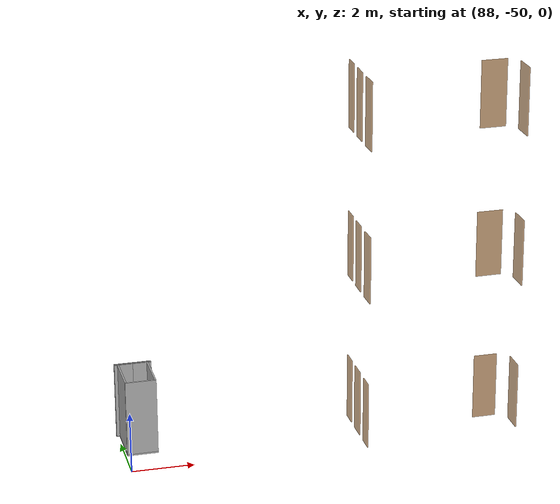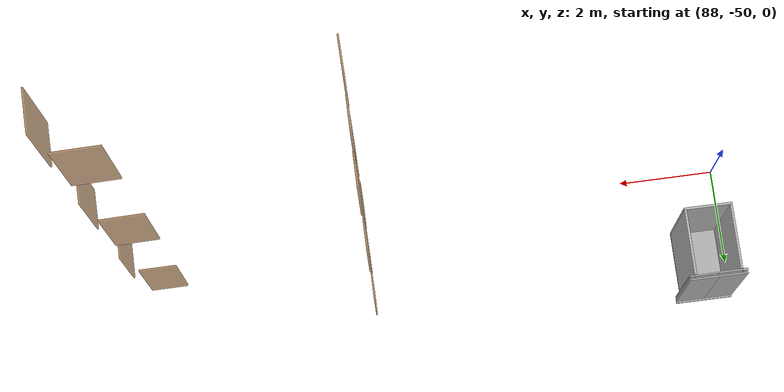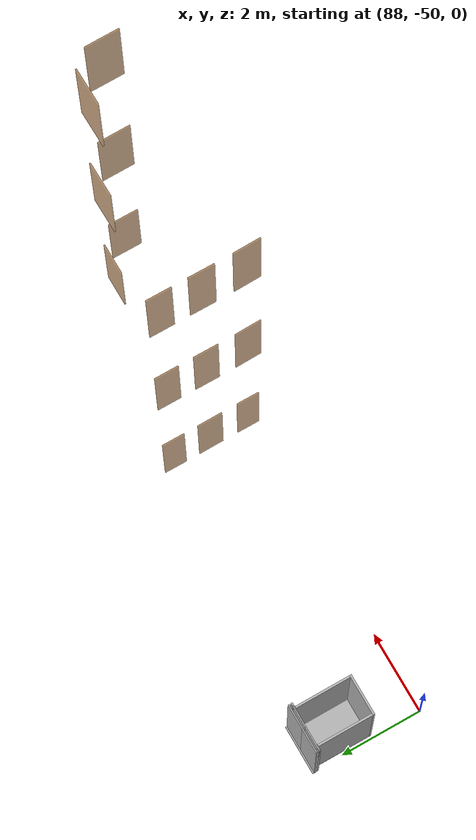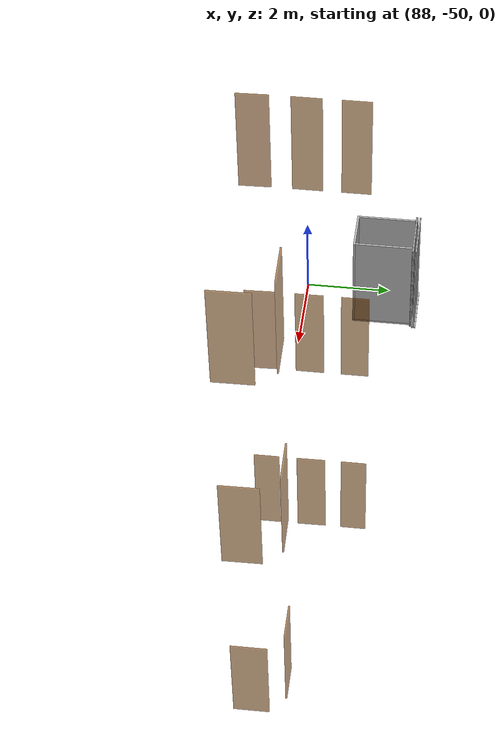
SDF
<sdf version="1.7">
 <world name="sim_world">
  <model name="p91">
   <pose>95.59673417083945 -48.081886462623366 0.0 0 0 1.5686141369561113</pose>
   <link name="right">
    <pose>0 0 1.11 0 0 0</pose>
    <visual name="right_visual">
     <geometry><box><size>0.5500736276757273 0.03 2.2</size></box></geometry>
     <material>
      <ambient>0.5 0.25 0 0.6</ambient>
      <diffuse>0.5 0.25 0 0.6</diffuse>
      <pbr><metal><metalness>0.0</metalness></metal></pbr>
     </material>
    </visual>
    <collision name="right_collision">
     <geometry><box><size>0.5500736276757273 0.03 2.2</size></box></geometry>
     <surface><contact><collide_bitmask>0x02</collide_bitmask></contact></surface>
    </collision>
    <inertial>
     <mass>50.0</mass>
     <inertia><ixx>20.17041666666667</ixx><iyy>21.4274208161014</iyy><izz>1.264504149434728</izz></inertia>
    </inertial>
   </link>
   <joint name="right_joint" type="revolute">
    <parent>world</parent>
    <child>right</child>
    <axis><xyz>0 0 1</xyz><limit><lower>0</lower><upper>1.57</upper></limit></axis>
    <pose>0.28003681383786366 0 0 0 0 0</pose>
   </joint>
   <plugin name="register_component" filename="libregister_component.so">
    <component name="Door">
     <v_max_door>0.5</v_max_door>
     <a_max_door>0.3</a_max_door>
     <a_nom_door>0.15</a_nom_door>
     <dx_min_door>0.01</dx_min_door>
     <f_max_door>500.0</f_max_door>
     <ros_interface>true</ros_interface>
     <door name="p91" type="SwingDoor" left_joint_name="empty_joint" right_joint_name="right_joint"/>
    </component>
   </plugin>
  </model>
  <model name="p92">
   <pose>95.59971186038939 -49.00974785932272 0.0 0 0 1.5822521638563822</pose>
   <link name="right">
    <pose>0 0 1.11 0 0 0</pose>
    <visual name="right_visual">
     <geometry><box><size>0.6165558828905612 0.03 2.2</size></box></geometry>
     <material>
      <ambient>0.5 0.25 0 0.6</ambient>
      <diffuse>0.5 0.25 0 0.6</diffuse>
      <pbr><metal><metalness>0.0</metalness></metal></pbr>
     </material>
    </visual>
    <collision name="right_collision">
     <geometry><box><size>0.6165558828905612 0.03 2.2</size></box></geometry>
     <surface><contact><collide_bitmask>0x02</collide_bitmask></contact></surface>
    </collision>
    <inertial>
     <mass>50.0</mass>
     <inertia><ixx>20.17041666666667</ixx><iyy>21.750588153029003</iyy><izz>1.5876714863623311</izz></inertia>
    </inertial>
   </link>
   <joint name="right_joint" type="revolute">
    <parent>world</parent>
    <child>right</child>
    <axis><xyz>0 0 1</xyz><limit><lower>0</lower><upper>1.57</upper></limit></axis>
    <pose>0.3132779414452806 0 0 0 0 0</pose>
   </joint>
   <plugin name="register_component" filename="libregister_component.so">
    <component name="Door">
     <v_max_door>0.5</v_max_door>
     <a_max_door>0.3</a_max_door>
     <a_nom_door>0.15</a_nom_door>
     <dx_min_door>0.01</dx_min_door>
     <f_max_door>500.0</f_max_door>
     <ros_interface>true</ros_interface>
     <door name="p92" type="SwingDoor" left_joint_name="empty_joint" right_joint_name="right_joint"/>
    </component>
   </plugin>
  </model>
  <model name="p93">
   <pose>95.60276732541266 -49.9771636395959 0.0 0 0 1.5688950377922342</pose>
   <link name="right">
    <pose>0 0 1.11 0 0 0</pose>
    <visual name="right_visual">
     <geometry><box><size>0.551006613825131 0.03 2.2</size></box></geometry>
     <material>
      <ambient>0.5 0.25 0 0.6</ambient>
      <diffuse>0.5 0.25 0 0.6</diffuse>
      <pbr><metal><metalness>0.0</metalness></metal></pbr>
     </material>
    </visual>
    <collision name="right_collision">
     <geometry><box><size>0.551006613825131 0.03 2.2</size></box></geometry>
     <surface><contact><collide_bitmask>0x02</collide_bitmask></contact></surface>
    </collision>
    <inertial>
     <mass>50.0</mass>
     <inertia><ixx>20.17041666666667</ixx><iyy>21.431701201995992</iyy><izz>1.2687845353293215</izz></inertia>
    </inertial>
   </link>
   <joint name="right_joint" type="revolute">
    <parent>world</parent>
    <child>right</child>
    <axis><xyz>0 0 1</xyz><limit><lower>0</lower><upper>1.57</upper></limit></axis>
    <pose>0.28050330691256553 0 0 0 0 0</pose>
   </joint>
   <plugin name="register_component" filename="libregister_component.so">
    <component name="Door">
     <v_max_door>0.5</v_max_door>
     <a_max_door>0.3</a_max_door>
     <a_nom_door>0.15</a_nom_door>
     <dx_min_door>0.01</dx_min_door>
     <f_max_door>500.0</f_max_door>
     <ros_interface>true</ros_interface>
     <door name="p93" type="SwingDoor" left_joint_name="empty_joint" right_joint_name="right_joint"/>
    </component>
   </plugin>
  </model>
  <model name="p94">
   <pose>99.93968326864396 -48.981548694853515 0.0 0 0 0.006281040079906356</pose>
   <link name="right">
    <pose>0 0 1.11 0 0 0</pose>
    <visual name="right_visual">
     <geometry><box><size>0.7754144439662852 0.03 2.2</size></box></geometry>
     <material>
      <ambient>0.5 0.25 0 0.6</ambient>
      <diffuse>0.5 0.25 0 0.6</diffuse>
      <pbr><metal><metalness>0.0</metalness></metal></pbr>
     </material>
    </visual>
    <collision name="right_collision">
     <geometry><box><size>0.7754144439662852 0.03 2.2</size></box></geometry>
     <surface><contact><collide_bitmask>0x02</collide_bitmask></contact></surface>
    </collision>
    <inertial>
     <mass>50.0</mass>
     <inertia><ixx>20.17041666666667</ixx><iyy>22.671948166298105</iyy><izz>2.5090314996314307</izz></inertia>
    </inertial>
   </link>
   <joint name="right_joint" type="revolute">
    <parent>world</parent>
    <child>right</child>
    <axis><xyz>0 0 -1</xyz><limit><lower>0</lower><upper>1.57</upper></limit></axis>
    <pose>0.3927072219831426 0 0 0 0 0</pose>
   </joint>
   <plugin name="register_component" filename="libregister_component.so">
    <component name="Door">
     <v_max_door>0.5</v_max_door>
     <a_max_door>0.3</a_max_door>
     <a_nom_door>0.15</a_nom_door>
     <dx_min_door>0.01</dx_min_door>
     <f_max_door>500.0</f_max_door>
     <ros_interface>true</ros_interface>
     <door name="p94" type="SwingDoor" left_joint_name="empty_joint" right_joint_name="right_joint"/>
    </component>
   </plugin>
  </model>
  <model name="p95">
   <pose>100.6838278865812 -49.662217415780304 0.0 0 0 1.5727459256749627</pose>
   <link name="right">
    <pose>0 0 1.11 0 0 0</pose>
    <visual name="right_visual">
     <geometry><box><size>0.7536677130659026 0.03 2.2</size></box></geometry>
     <material>
      <ambient>0.5 0.25 0 0.6</ambient>
      <diffuse>0.5 0.25 0 0.6</diffuse>
      <pbr><metal><metalness>0.0</metalness></metal></pbr>
     </material>
    </visual>
    <collision name="right_collision">
     <geometry><box><size>0.7536677130659026 0.03 2.2</size></box></geometry>
     <surface><contact><collide_bitmask>0x02</collide_bitmask></contact></surface>
    </collision>
    <inertial>
     <mass>50.0</mass>
     <inertia><ixx>20.17041666666667</ixx><iyy>22.53339592382495</iyy><izz>2.3704792571582827</izz></inertia>
    </inertial>
   </link>
   <joint name="right_joint" type="revolute">
    <parent>world</parent>
    <child>right</child>
    <axis><xyz>0 0 -1</xyz><limit><lower>0</lower><upper>1.57</upper></limit></axis>
    <pose>0.3818338565329513 0 0 0 0 0</pose>
   </joint>
   <plugin name="register_component" filename="libregister_component.so">
    <component name="Door">
     <v_max_door>0.5</v_max_door>
     <a_max_door>0.3</a_max_door>
     <a_nom_door>0.15</a_nom_door>
     <dx_min_door>0.01</dx_min_door>
     <f_max_door>500.0</f_max_door>
     <ros_interface>true</ros_interface>
     <door name="p95" type="SwingDoor" left_joint_name="empty_joint" right_joint_name="right_joint"/>
    </component>
   </plugin>
  </model>
  <model name="puerta17">
   <pose>99.95244105833734 -48.95720496304982 5.0 0 0 0.019025058241312218</pose>
   <link name="right">
    <pose>0 0 1.11 0 0 0</pose>
    <visual name="right_visual">
     <geometry><box><size>0.8532630539413264 0.03 2.2</size></box></geometry>
     <material>
      <ambient>0.5 0.25 0 0.6</ambient>
      <diffuse>0.5 0.25 0 0.6</diffuse>
      <pbr><metal><metalness>0.0</metalness></metal></pbr>
     </material>
    </visual>
    <collision name="right_collision">
     <geometry><box><size>0.8532630539413264 0.03 2.2</size></box></geometry>
     <surface><contact><collide_bitmask>0x02</collide_bitmask></contact></surface>
    </collision>
    <inertial>
     <mass>50.0</mass>
     <inertia><ixx>20.17041666666667</ixx><iyy>23.200240996755333</iyy><izz>3.037324330088662</izz></inertia>
    </inertial>
   </link>
   <joint name="right_joint" type="revolute">
    <parent>world</parent>
    <child>right</child>
    <axis><xyz>0 0 -1</xyz><limit><lower>0</lower><upper>1.57</upper></limit></axis>
    <pose>0.4316315269706632 0 0 0 0 0</pose>
   </joint>
   <plugin name="register_component" filename="libregister_component.so">
    <component name="Door">
     <v_max_door>0.5</v_max_door>
     <a_max_door>0.3</a_max_door>
     <a_nom_door>0.15</a_nom_door>
     <dx_min_door>0.01</dx_min_door>
     <f_max_door>500.0</f_max_door>
     <ros_interface>true</ros_interface>
     <door name="puerta17" type="SwingDoor" left_joint_name="empty_joint" right_joint_name="right_joint"/>
    </component>
   </plugin>
  </model>
  <model name="puerta18">
   <pose>100.6888613951383 -49.69341101394732 5.0 0 0 1.5827214807148386</pose>
   <link name="right">
    <pose>0 0 1.11 0 0 0</pose>
    <visual name="right_visual">
     <geometry><box><size>0.7810457540295127 0.03 2.2</size></box></geometry>
     <material>
      <ambient>0.5 0.25 0 0.6</ambient>
      <diffuse>0.5 0.25 0 0.6</diffuse>
      <pbr><metal><metalness>0.0</metalness></metal></pbr>
     </material>
    </visual>
    <collision name="right_collision">
     <geometry><box><size>0.7810457540295127 0.03 2.2</size></box></geometry>
     <surface><contact><collide_bitmask>0x02</collide_bitmask></contact></surface>
    </collision>
    <inertial>
     <mass>50.0</mass>
     <inertia><ixx>20.17041666666667</ixx><iyy>22.70846862453138</iyy><izz>2.5455519578647086</izz></inertia>
    </inertial>
   </link>
   <joint name="right_joint" type="revolute">
    <parent>world</parent>
    <child>right</child>
    <axis><xyz>0 0 -1</xyz><limit><lower>0</lower><upper>1.57</upper></limit></axis>
    <pose>0.39552287701475636 0 0 0 0 0</pose>
   </joint>
   <plugin name="register_component" filename="libregister_component.so">
    <component name="Door">
     <v_max_door>0.5</v_max_door>
     <a_max_door>0.3</a_max_door>
     <a_nom_door>0.15</a_nom_door>
     <dx_min_door>0.01</dx_min_door>
     <f_max_door>500.0</f_max_door>
     <ros_interface>true</ros_interface>
     <door name="puerta18" type="SwingDoor" left_joint_name="empty_joint" right_joint_name="right_joint"/>
    </component>
   </plugin>
  </model>
  <model name="puerta60">
   <pose>95.60110115308102 -48.08146028843064 5.0 0 0 1.573332938243456</pose>
   <link name="right">
    <pose>0 0 1.11 0 0 0</pose>
    <visual name="right_visual">
     <geometry><box><size>0.5587701300073319 0.03 2.2</size></box></geometry>
     <material>
      <ambient>0.5 0.25 0 0.6</ambient>
      <diffuse>0.5 0.25 0 0.6</diffuse>
      <pbr><metal><metalness>0.0</metalness></metal></pbr>
     </material>
    </visual>
    <collision name="right_collision">
     <geometry><box><size>0.5587701300073319 0.03 2.2</size></box></geometry>
     <surface><contact><collide_bitmask>0x02</collide_bitmask></contact></surface>
    </collision>
    <inertial>
     <mass>50.0</mass>
     <inertia><ixx>20.17041666666667</ixx><iyy>21.467600242451713</iyy><izz>1.3046835757850443</izz></inertia>
    </inertial>
   </link>
   <joint name="right_joint" type="revolute">
    <parent>world</parent>
    <child>right</child>
    <axis><xyz>0 0 1</xyz><limit><lower>0</lower><upper>1.57</upper></limit></axis>
    <pose>0.28438506500366595 0 0 0 0 0</pose>
   </joint>
   <plugin name="register_component" filename="libregister_component.so">
    <component name="Door">
     <v_max_door>0.5</v_max_door>
     <a_max_door>0.3</a_max_door>
     <a_nom_door>0.15</a_nom_door>
     <dx_min_door>0.01</dx_min_door>
     <f_max_door>500.0</f_max_door>
     <ros_interface>true</ros_interface>
     <door name="puerta60" type="SwingDoor" left_joint_name="empty_joint" right_joint_name="right_joint"/>
    </component>
   </plugin>
  </model>
  <model name="puerta61">
   <pose>95.60124256969104 -49.00539797087187 5.0 0 0 1.5686476763821866</pose>
   <link name="right">
    <pose>0 0 1.11 0 0 0</pose>
    <visual name="right_visual">
     <geometry><box><size>0.5789943378946419 0.03 2.2</size></box></geometry>
     <material>
      <ambient>0.5 0.25 0 0.6</ambient>
      <diffuse>0.5 0.25 0 0.6</diffuse>
      <pbr><metal><metalness>0.0</metalness></metal></pbr>
     </material>
    </visual>
    <collision name="right_collision">
     <geometry><box><size>0.5789943378946419 0.03 2.2</size></box></geometry>
     <surface><contact><collide_bitmask>0x02</collide_bitmask></contact></surface>
    </collision>
    <inertial>
     <mass>50.0</mass>
     <inertia><ixx>20.17041666666667</ixx><iyy>21.5634768471419</iyy><izz>1.4005601804752286</izz></inertia>
    </inertial>
   </link>
   <joint name="right_joint" type="revolute">
    <parent>world</parent>
    <child>right</child>
    <axis><xyz>0 0 1</xyz><limit><lower>0</lower><upper>1.57</upper></limit></axis>
    <pose>0.294497168947321 0 0 0 0 0</pose>
   </joint>
   <plugin name="register_component" filename="libregister_component.so">
    <component name="Door">
     <v_max_door>0.5</v_max_door>
     <a_max_door>0.3</a_max_door>
     <a_nom_door>0.15</a_nom_door>
     <dx_min_door>0.01</dx_min_door>
     <f_max_door>500.0</f_max_door>
     <ros_interface>true</ros_interface>
     <door name="puerta61" type="SwingDoor" left_joint_name="empty_joint" right_joint_name="right_joint"/>
    </component>
   </plugin>
  </model>
  <model name="puerta76">
   <pose>95.60899633592587 -50.0050087931931 5.0 0 0 1.5972888615365608</pose>
   <link name="right">
    <pose>0 0 1.11 0 0 0</pose>
    <visual name="right_visual">
     <geometry><box><size>0.6186814948936846 0.03 2.2</size></box></geometry>
     <material>
      <ambient>0.5 0.25 0 0.6</ambient>
      <diffuse>0.5 0.25 0 0.6</diffuse>
      <pbr><metal><metalness>0.0</metalness></metal></pbr>
     </material>
    </visual>
    <collision name="right_collision">
     <geometry><box><size>0.6186814948936846 0.03 2.2</size></box></geometry>
     <surface><contact><collide_bitmask>0x02</collide_bitmask></contact></surface>
    </collision>
    <inertial>
     <mass>50.0</mass>
     <inertia><ixx>20.17041666666667</ixx><iyy>21.761528300516186</iyy><izz>1.5986116338495182</izz></inertia>
    </inertial>
   </link>
   <joint name="right_joint" type="revolute">
    <parent>world</parent>
    <child>right</child>
    <axis><xyz>0 0 1</xyz><limit><lower>0</lower><upper>1.57</upper></limit></axis>
    <pose>0.3143407474468423 0 0 0 0 0</pose>
   </joint>
   <plugin name="register_component" filename="libregister_component.so">
    <component name="Door">
     <v_max_door>0.5</v_max_door>
     <a_max_door>0.3</a_max_door>
     <a_nom_door>0.15</a_nom_door>
     <dx_min_door>0.01</dx_min_door>
     <f_max_door>500.0</f_max_door>
     <ros_interface>true</ros_interface>
     <door name="puerta76" type="SwingDoor" left_joint_name="empty_joint" right_joint_name="right_joint"/>
    </component>
   </plugin>
  </model>
  <model name="puerta108">
   <pose>99.95312906821205 -48.95728642132342 10.0 0 0 0.019026768718181927</pose>
   <link name="right">
    <pose>0 0 1.11 0 0 0</pose>
    <visual name="right_visual">
     <geometry><box><size>0.8532731434198877 0.03 2.2</size></box></geometry>
     <material>
      <ambient>0.5 0.25 0 0.6</ambient>
      <diffuse>0.5 0.25 0 0.6</diffuse>
      <pbr><metal><metalness>0.0</metalness></metal></pbr>
     </material>
    </visual>
    <collision name="right_collision">
     <geometry><box><size>0.8532731434198877 0.03 2.2</size></box></geometry>
     <surface><contact><collide_bitmask>0x02</collide_bitmask></contact></surface>
    </collision>
    <inertial>
     <mass>50.0</mass>
     <inertia><ixx>20.17041666666667</ixx><iyy>23.200312738673574</iyy><izz>3.037396072006901</izz></inertia>
    </inertial>
   </link>
   <joint name="right_joint" type="revolute">
    <parent>world</parent>
    <child>right</child>
    <axis><xyz>0 0 -1</xyz><limit><lower>0</lower><upper>1.57</upper></limit></axis>
    <pose>0.43163657170994385 0 0 0 0 0</pose>
   </joint>
   <plugin name="register_component" filename="libregister_component.so">
    <component name="Door">
     <v_max_door>0.5</v_max_door>
     <a_max_door>0.3</a_max_door>
     <a_nom_door>0.15</a_nom_door>
     <dx_min_door>0.01</dx_min_door>
     <f_max_door>500.0</f_max_door>
     <ros_interface>true</ros_interface>
     <door name="puerta108" type="SwingDoor" left_joint_name="empty_joint" right_joint_name="right_joint"/>
    </component>
   </plugin>
  </model>
  <model name="puerta109">
   <pose>100.6895592712809 -49.69349981706151 10.0 0 0 1.5827231911917274</pose>
   <link name="right">
    <pose>0 0 1.11 0 0 0</pose>
    <visual name="right_visual">
     <geometry><box><size>0.7810549994607071 0.03 2.2</size></box></geometry>
     <material>
      <ambient>0.5 0.25 0 0.6</ambient>
      <diffuse>0.5 0.25 0 0.6</diffuse>
      <pbr><metal><metalness>0.0</metalness></metal></pbr>
     </material>
    </visual>
    <collision name="right_collision">
     <geometry><box><size>0.7810549994607071 0.03 2.2</size></box></geometry>
     <surface><contact><collide_bitmask>0x02</collide_bitmask></contact></surface>
    </collision>
    <inertial>
     <mass>50.0</mass>
     <inertia><ixx>20.17041666666667</ixx><iyy>22.708528800760696</iyy><izz>2.545612134094022</izz></inertia>
    </inertial>
   </link>
   <joint name="right_joint" type="revolute">
    <parent>world</parent>
    <child>right</child>
    <axis><xyz>0 0 -1</xyz><limit><lower>0</lower><upper>1.57</upper></limit></axis>
    <pose>0.39552749973035356 0 0 0 0 0</pose>
   </joint>
   <plugin name="register_component" filename="libregister_component.so">
    <component name="Door">
     <v_max_door>0.5</v_max_door>
     <a_max_door>0.3</a_max_door>
     <a_nom_door>0.15</a_nom_door>
     <dx_min_door>0.01</dx_min_door>
     <f_max_door>500.0</f_max_door>
     <ros_interface>true</ros_interface>
     <door name="puerta109" type="SwingDoor" left_joint_name="empty_joint" right_joint_name="right_joint"/>
    </component>
   </plugin>
  </model>
  <model name="puerta138">
   <pose>95.60173680825662 -48.08153895430001 10.0 0 0 1.573334648720326</pose>
   <link name="right">
    <pose>0 0 1.11 0 0 0</pose>
    <visual name="right_visual">
     <geometry><box><size>0.5587767775685748 0.03 2.2</size></box></geometry>
     <material>
      <ambient>0.5 0.25 0 0.6</ambient>
      <diffuse>0.5 0.25 0 0.6</diffuse>
      <pbr><metal><metalness>0.0</metalness></metal></pbr>
     </material>
    </visual>
    <collision name="right_collision">
     <geometry><box><size>0.5587767775685748 0.03 2.2</size></box></geometry>
     <surface><contact><collide_bitmask>0x02</collide_bitmask></contact></surface>
    </collision>
    <inertial>
     <mass>50.0</mass>
     <inertia><ixx>20.17041666666667</ixx><iyy>21.467631196458004</iyy><izz>1.3047145297913356</izz></inertia>
    </inertial>
   </link>
   <joint name="right_joint" type="revolute">
    <parent>world</parent>
    <child>right</child>
    <axis><xyz>0 0 1</xyz><limit><lower>0</lower><upper>1.57</upper></limit></axis>
    <pose>0.2843883887842874 0 0 0 0 0</pose>
   </joint>
   <plugin name="register_component" filename="libregister_component.so">
    <component name="Door">
     <v_max_door>0.5</v_max_door>
     <a_max_door>0.3</a_max_door>
     <a_nom_door>0.15</a_nom_door>
     <dx_min_door>0.01</dx_min_door>
     <f_max_door>500.0</f_max_door>
     <ros_interface>true</ros_interface>
     <door name="puerta138" type="SwingDoor" left_joint_name="empty_joint" right_joint_name="right_joint"/>
    </component>
   </plugin>
  </model>
  <model name="puerta139">
   <pose>95.60187980691198 -49.0054874351177 10.0 0 0 1.56864938685906</pose>
   <link name="right">
    <pose>0 0 1.11 0 0 0</pose>
    <visual name="right_visual">
     <geometry><box><size>0.5790012218284661 0.03 2.2</size></box></geometry>
     <material>
      <ambient>0.5 0.25 0 0.6</ambient>
      <diffuse>0.5 0.25 0 0.6</diffuse>
      <pbr><metal><metalness>0.0</metalness></metal></pbr>
     </material>
    </visual>
    <collision name="right_collision">
     <geometry><box><size>0.5790012218284661 0.03 2.2</size></box></geometry>
     <surface><contact><collide_bitmask>0x02</collide_bitmask></contact></surface>
    </collision>
    <inertial>
     <mass>50.0</mass>
     <inertia><ixx>20.17041666666667</ixx><iyy>21.563510061995242</iyy><izz>1.4005933953285694</izz></inertia>
    </inertial>
   </link>
   <joint name="right_joint" type="revolute">
    <parent>world</parent>
    <child>right</child>
    <axis><xyz>0 0 1</xyz><limit><lower>0</lower><upper>1.57</upper></limit></axis>
    <pose>0.2945006109142331 0 0 0 0 0</pose>
   </joint>
   <plugin name="register_component" filename="libregister_component.so">
    <component name="Door">
     <v_max_door>0.5</v_max_door>
     <a_max_door>0.3</a_max_door>
     <a_nom_door>0.15</a_nom_door>
     <dx_min_door>0.01</dx_min_door>
     <f_max_door>500.0</f_max_door>
     <ros_interface>true</ros_interface>
     <door name="puerta139" type="SwingDoor" left_joint_name="empty_joint" right_joint_name="right_joint"/>
    </component>
   </plugin>
  </model>
  <model name="puerta150">
   <pose>95.60963537360095 -50.005109927232255 10.0 0 0 1.597290572013442</pose>
   <link name="right">
    <pose>0 0 1.11 0 0 0</pose>
    <visual name="right_visual">
     <geometry><box><size>0.6186888426753919 0.03 2.2</size></box></geometry>
     <material>
      <ambient>0.5 0.25 0 0.6</ambient>
      <diffuse>0.5 0.25 0 0.6</diffuse>
      <pbr><metal><metalness>0.0</metalness></metal></pbr>
     </material>
    </visual>
    <collision name="right_collision">
     <geometry><box><size>0.6186888426753919 0.03 2.2</size></box></geometry>
     <surface><contact><collide_bitmask>0x02</collide_bitmask></contact></surface>
    </collision>
    <inertial>
     <mass>50.0</mass>
     <inertia><ixx>20.17041666666667</ixx><iyy>21.761566183545906</iyy><izz>1.598649516879233</izz></inertia>
    </inertial>
   </link>
   <joint name="right_joint" type="revolute">
    <parent>world</parent>
    <child>right</child>
    <axis><xyz>0 0 1</xyz><limit><lower>0</lower><upper>1.57</upper></limit></axis>
    <pose>0.31434442133769597 0 0 0 0 0</pose>
   </joint>
   <plugin name="register_component" filename="libregister_component.so">
    <component name="Door">
     <v_max_door>0.5</v_max_door>
     <a_max_door>0.3</a_max_door>
     <a_nom_door>0.15</a_nom_door>
     <dx_min_door>0.01</dx_min_door>
     <f_max_door>500.0</f_max_door>
     <ros_interface>true</ros_interface>
     <door name="puerta150" type="SwingDoor" left_joint_name="empty_joint" right_joint_name="right_joint"/>
    </component>
   </plugin>
  </model>
  <model name="ShaftDoor_right_common_lift_L0_right_common_lift_door">
   <pose>88.57688854835307 -47.28293292128757 0.0 0 0 0.0</pose>
   <link name="right_door">
    <pose>0.3 0 1.25 0 0 0</pose>
    <visual name="right_door_visual">
     <geometry><box><size>0.6 0.03 2.5</size></box></geometry>
     <material>
      <ambient>0.5 0.5 0.5 1</ambient>
      <diffuse>0.7 0.7 0.7 1</diffuse>
      <specular>0.6 0.6 0.6 1</specular>
      <emissive>0.1 0.1 0.1 1</emissive>
     </material>
    </visual>
    <collision name="right_door_collision">
     <geometry><box><size>0.6 0.03 2.5</size></box></geometry>
     <surface><contact><collide_bitmask>0x02</collide_bitmask></contact></surface>
    </collision>
   </link>
   <link name="left_door">
    <pose>-0.3 0 1.25 0 0 0</pose>
    <visual name="left_door_visual">
     <geometry><box><size>0.6 0.03 2.5</size></box></geometry>
     <material>
      <ambient>0.5 0.5 0.5 1</ambient>
      <diffuse>0.7 0.7 0.7 1</diffuse>
      <specular>0.6 0.6 0.6 1</specular>
      <emissive>0.1 0.1 0.1 1</emissive>
     </material>
    </visual>
    <collision name="left_door_collision">
     <geometry><box><size>0.6 0.03 2.5</size></box></geometry>
     <surface><contact><collide_bitmask>0x02</collide_bitmask></contact></surface>
    </collision>
   </link>
   <joint name="right_joint" type="prismatic">
    <parent>world</parent>
    <child>right_door</child>
    <axis><xyz>1 0 0</xyz><limit><lower>0</lower><upper>0.6</upper></limit></axis>
   </joint>
   <joint name="left_joint" type="prismatic">
    <parent>world</parent>
    <child>left_door</child>
    <axis><xyz>1 0 0</xyz><limit><lower>-0.6</lower><upper>0</upper></limit></axis>
   </joint>
   <link name="ramp">
    <pose>0 0 -0.025 0 0 0</pose>
    <visual name="ramp_visual">
     <geometry><box><size>1.2 0.1 0.05</size></box></geometry>
     <material>
      <ambient>0.5 0.5 0.5 1</ambient>
      <diffuse>0.7 0.7 0.7 1</diffuse>
      <specular>0.6 0.6 0.6 1</specular>
      <emissive>0.1 0.1 0.1 1</emissive>
     </material>
    </visual>
    <collision name="ramp_collision">
     <geometry><box><size>1.2 0.1 0.05</size></box></geometry>
     <surface><contact><collide_bitmask>0x02</collide_bitmask></contact></surface>
    </collision>
   </link>
   <joint name="ramp_joint" type="fixed"><parent>world</parent><child>ramp</child></joint>
   <plugin name="register_component" filename="libregister_component.so">
    <component name="Door">
     <v_max_door>0.3</v_max_door>
     <a_max_door>0.2</a_max_door>
     <a_nom_door>0.1</a_nom_door>
     <dx_min_door>0.0001</dx_min_door>
     <f_max_door>35.0</f_max_door>
     <door left_joint_name="left_joint" name="ShaftDoor_right_common_lift_L0_right_common_lift_door" right_joint_name="right_joint" type="DoubleSlidingDoor"/>
    </component>
   </plugin>
  </model>
  <model name="right_common_lift">
   <link name="platform">
    <inertial><mass>1200</mass><inertia><ixx>100.25</ixx><iyy>210.5</iyy><izz>310.25</izz></inertia></inertial>
    <visual name="floor_visual">
     <pose>0 0 -0.025 0 0 0</pose>
     <geometry><box><size>1.0 1.45 0.05</size></box></geometry>
     <material>
      <ambient>0.5 0.5 0.5 1</ambient>
      <diffuse>0.7 0.7 0.7 1</diffuse>
      <specular>0.6 0.6 0.6 1</specular>
      <emissive>0.1 0.1 0.1 1</emissive>
     </material>
    </visual>
    <collision name="floor_collision">
     <pose>0 0 -0.025 0 0 0</pose>
     <geometry><box><size>1.0 1.45 0.05</size></box></geometry>
     <surface><contact><collide_bitmask>0x01</collide_bitmask></contact></surface>
    </collision>
    <visual name="frontwall1_visual">
     <pose>-0.55 0.7 1.25 0 0 0</pose>
     <geometry><box><size>0.09999999999999998 0.05 2.5</size></box></geometry>
     <material>
      <ambient>0.5 0.5 0.5 1</ambient>
      <diffuse>0.7 0.7 0.7 1</diffuse>
      <specular>0.6 0.6 0.6 1</specular>
      <emissive>0.1 0.1 0.1 1</emissive>
     </material>
    </visual>
    <collision name="frontwall1_collision">
     <pose>-0.55 0.7 1.25 0 0 0</pose>
     <geometry><box><size>0.09999999999999998 0.05 2.5</size></box></geometry>
     <surface><contact><collide_bitmask>0x01</collide_bitmask></contact></surface>
    </collision>
    <visual name="frontwall2_visual">
     <pose>0.55 0.7 1.25 0 0 0</pose>
     <geometry><box><size>0.09999999999999998 0.05 2.5</size></box></geometry>
     <material>
      <ambient>0.5 0.5 0.5 1</ambient>
      <diffuse>0.7 0.7 0.7 1</diffuse>
      <specular>0.6 0.6 0.6 1</specular>
      <emissive>0.1 0.1 0.1 1</emissive>
     </material>
    </visual>
    <collision name="frontwall2_collision">
     <pose>0.55 0.7 1.25 0 0 0</pose>
     <geometry><box><size>0.09999999999999998 0.05 2.5</size></box></geometry>
     <surface><contact><collide_bitmask>0x01</collide_bitmask></contact></surface>
    </collision>
    <visual name="backwall1_visual">
     <pose>0.0 -0.7 1.25 0 0 0</pose>
     <geometry><box><size>1.0 0.05 2.5</size></box></geometry>
     <material>
      <ambient>0.5 0.5 0.5 1</ambient>
      <diffuse>0.7 0.7 0.7 1</diffuse>
      <specular>0.6 0.6 0.6 1</specular>
      <emissive>0.1 0.1 0.1 1</emissive>
     </material>
    </visual>
    <collision name="backwall1_collision">
     <pose>0.0 -0.7 1.25 0 0 0</pose>
     <geometry><box><size>1.0 0.05 2.5</size></box></geometry>
     <surface><contact><collide_bitmask>0x01</collide_bitmask></contact></surface>
    </collision>
    <visual name="leftwall1_visual">
     <pose>-0.475 0.0 1.25 0 0 1.5707963267948966</pose>
     <geometry><box><size>1.3499999999999999 0.05 2.5</size></box></geometry>
     <material>
      <ambient>0.5 0.5 0.5 1</ambient>
      <diffuse>0.7 0.7 0.7 1</diffuse>
      <specular>0.6 0.6 0.6 1</specular>
      <emissive>0.1 0.1 0.1 1</emissive>
     </material>
    </visual>
    <collision name="leftwall1_collision">
     <pose>-0.475 0.0 1.25 0 0 1.5707963267948966</pose>
     <geometry><box><size>1.3499999999999999 0.05 2.5</size></box></geometry>
     <surface><contact><collide_bitmask>0x01</collide_bitmask></contact></surface>
    </collision>
    <visual name="rightwall1_visual">
     <pose>0.475 0.0 1.25 0 0 1.5707963267948966</pose>
     <geometry><box><size>1.3499999999999999 0.05 2.5</size></box></geometry>
     <material>
      <ambient>0.5 0.5 0.5 1</ambient>
      <diffuse>0.7 0.7 0.7 1</diffuse>
      <specular>0.6 0.6 0.6 1</specular>
      <emissive>0.1 0.1 0.1 1</emissive>
     </material>
    </visual>
    <collision name="rightwall1_collision">
     <pose>0.475 0.0 1.25 0 0 1.5707963267948966</pose>
     <geometry><box><size>1.3499999999999999 0.05 2.5</size></box></geometry>
     <surface><contact><collide_bitmask>0x01</collide_bitmask></contact></surface>
    </collision>
   </link>
   <joint name="cabin_joint" type="prismatic">
    <parent>world</parent>
    <child>platform</child>
    <axis><xyz>0 0 1</xyz></axis>
   </joint>
   <model name="CabinDoor_right_common_lift_right_common_lift_door">
    <pose>0.0 0.7 0 0 0 0.0</pose>
    <link name="right_door">
     <pose>0.3 0 1.25 0 0 0</pose>
     <visual name="right_door_visual">
      <geometry><box><size>0.6 0.03 2.5</size></box></geometry>
      <material>
       <ambient>0.5 0.5 0.5 1</ambient>
       <diffuse>0.7 0.7 0.7 1</diffuse>
       <specular>0.6 0.6 0.6 1</specular>
       <emissive>0.1 0.1 0.1 1</emissive>
      </material>
     </visual>
     <collision name="right_door_collision">
      <geometry><box><size>0.6 0.03 2.5</size></box></geometry>
      <surface><contact><collide_bitmask>0x02</collide_bitmask></contact></surface>
     </collision>
    </link>
    <link name="left_door">
     <pose>-0.3 0 1.25 0 0 0</pose>
     <visual name="left_door_visual">
      <geometry><box><size>0.6 0.03 2.5</size></box></geometry>
      <material>
       <ambient>0.5 0.5 0.5 1</ambient>
       <diffuse>0.7 0.7 0.7 1</diffuse>
       <specular>0.6 0.6 0.6 1</specular>
       <emissive>0.1 0.1 0.1 1</emissive>
      </material>
     </visual>
     <collision name="left_door_collision">
      <geometry><box><size>0.6 0.03 2.5</size></box></geometry>
      <surface><contact><collide_bitmask>0x02</collide_bitmask></contact></surface>
     </collision>
    </link>
    <plugin name="register_component" filename="libregister_component.so">
     <component name="Door">
      <v_max_door>0.3</v_max_door>
      <a_max_door>0.2</a_max_door>
      <a_nom_door>0.1</a_nom_door>
      <dx_min_door>0.0001</dx_min_door>
      <f_max_door>35.0</f_max_door>
      <door left_joint_name="CabinDoor_right_common_lift_right_common_lift_door_left_joint" name="CabinDoor_right_common_lift_right_common_lift_door" right_joint_name="CabinDoor_right_common_lift_right_common_lift_door_right_joint" type="DoubleSlidingDoor"/>
     </component>
    </plugin>
   </model>
   <joint name="CabinDoor_right_common_lift_right_common_lift_door_right_joint" type="prismatic">
    <parent>platform</parent>
    <child>CabinDoor_right_common_lift_right_common_lift_door::right_door</child>
    <axis><xyz>1 0 0</xyz><limit><lower>0</lower><upper>0.6</upper></limit></axis>
   </joint>
   <joint name="CabinDoor_right_common_lift_right_common_lift_door_left_joint" type="prismatic">
    <parent>platform</parent>
    <child>CabinDoor_right_common_lift_right_common_lift_door::left_door</child>
    <axis><xyz>1 0 0</xyz><limit><lower>-0.6</lower><upper>0</upper></limit></axis>
   </joint>
   <plugin name="register_component" filename="libregister_component.so">
    <component name="Lift">
     <lift_name>right_common_lift</lift_name>
     <floor name="L0" elevation="0.0">
      <door_pair cabin_door="CabinDoor_right_common_lift_right_common_lift_door" shaft_door="ShaftDoor_right_common_lift_L0_right_common_lift_door"/>
     </floor>
     <floor name="L1" elevation="5.0">
      <door_pair cabin_door="CabinDoor_right_common_lift_right_common_lift_door" shaft_door="ShaftDoor_right_common_lift_L1_right_common_lift_door"/>
     </floor>
     <floor name="L2" elevation="10.0">
      <door_pair cabin_door="CabinDoor_right_common_lift_right_common_lift_door" shaft_door="ShaftDoor_right_common_lift_L2_right_common_lift_door"/>
     </floor>
     <initial_floor>L1</initial_floor>
     <v_max_cabin>2.0</v_max_cabin>
     <a_max_cabin>1.2</a_max_cabin>
     <a_nom_cabin>1.0</a_nom_cabin>
     <dx_min_cabin>0.001</dx_min_cabin>
     <f_max_cabin>25323.0</f_max_cabin>
     <cabin_joint_name>cabin_joint</cabin_joint_name>
    </component>
   </plugin>
   <pose>88.57688854835307 -48.057932921287566 0 0 0 0.0</pose>
  </model>
 </world>
</sdf>
